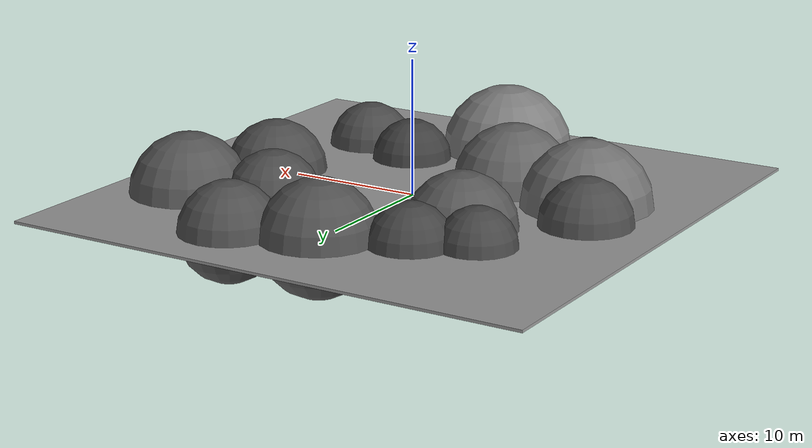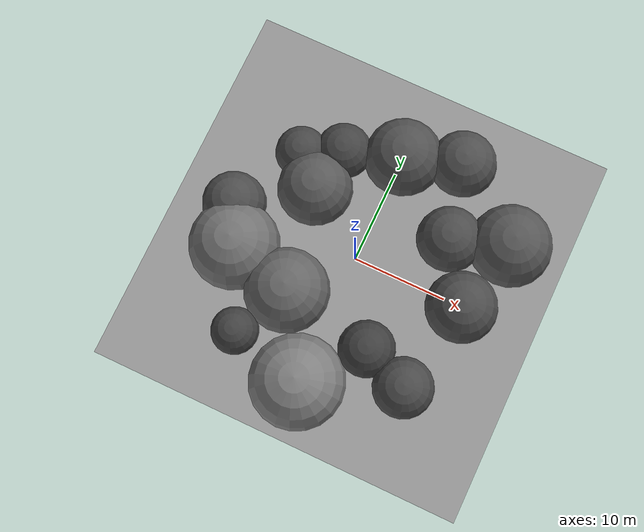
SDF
<?xml version="1.0" ?>
<sdf version="1.9">
<world name="lunar_crater_15">

  <!-- Lighting -->
  <light type="directional" name="sun">
    <pose>0 0 50 0 0 0</pose>
    <diffuse>0.7 0.7 0.7 1</diffuse>
    <direction>0 0 -1</direction>
    <cast_shadows>true</cast_shadows>
  </light>

  <!-- Lunar Surface (40x40m as per proposal) -->
  <model name="lunar_surface">
    <static>true</static>
    <link name="link">
      <collision name="collision">
        <geometry>
          <box>
            <size>40 40 0.2</size>
          </box>
        </geometry>
      </collision>
      <visual name="visual">
        <geometry>
          <box>
            <size>40 40 0.2</size>
          </box>
        </geometry>
        <material>
          <ambient>0.4 0.4 0.4 1</ambient>
          <diffuse>0.6 0.6 0.6 1</diffuse>
          <specular>0.1 0.1 0.1 1</specular>
        </material>
      </visual>
    </link>
  </model>

  <!-- 15 CRATERS (as per proposal: 15-20 craters) -->
  <!-- Crater sizes: 5-10m diameter (2.5-5m radius) as per proposal -->

  <model name="crater_1">
    <pose>8 6 0.1 0 0 0</pose>
    <static>true</static>
    <link name="link">
      <visual name="visual">
        <geometry><sphere><radius>3.5</radius></sphere></geometry>
        <material><ambient>0.2 0.2 0.2 1</ambient><diffuse>0.3 0.3 0.3 1</diffuse></material>
      </visual>
    </link>
  </model>

  <model name="crater_2">
    <pose>-7 5 0.1 0 0 0</pose>
    <static>true</static>
    <link name="link">
      <visual name="visual">
        <geometry><sphere><radius>4.0</radius></sphere></geometry>
        <material><ambient>0.25 0.25 0.25 1</ambient><diffuse>0.35 0.35 0.35 1</diffuse></material>
      </visual>
    </link>
  </model>

  <model name="crater_3">
    <pose>5 -8 0.1 0 0 0</pose>
    <static>true</static>
    <link name="link">
      <visual name="visual">
        <geometry><sphere><radius>3.0</radius></sphere></geometry>
        <material><ambient>0.15 0.15 0.15 1</ambient><diffuse>0.25 0.25 0.25 1</diffuse></material>
      </visual>
    </link>
  </model>

  <model name="crater_4">
    <pose>-5 -6 0.1 0 0 0</pose>
    <static>true</static>
    <link name="link">
      <visual name="visual">
        <geometry><sphere><radius>4.5</radius></sphere></geometry>
        <material><ambient>0.3 0.3 0.3 1</ambient><diffuse>0.4 0.4 0.4 1</diffuse></material>
      </visual>
    </link>
  </model>

  <model name="crater_5">
    <pose>12 0 0.1 0 0 0</pose>
    <static>true</static>
    <link name="link">
      <visual name="visual">
        <geometry><sphere><radius>3.8</radius></sphere></geometry>
        <material><ambient>0.2 0.2 0.2 1</ambient><diffuse>0.3 0.3 0.3 1</diffuse></material>
      </visual>
    </link>
  </model>

  <model name="crater_6">
    <pose>-10 8 0.1 0 0 0</pose>
    <static>true</static>
    <link name="link">
      <visual name="visual">
        <geometry><sphere><radius>2.8</radius></sphere></geometry>
        <material><ambient>0.18 0.18 0.18 1</ambient><diffuse>0.28 0.28 0.28 1</diffuse></material>
      </visual>
    </link>
  </model>

  <model name="crater_7">
    <pose>0 12 0.1 0 0 0</pose>
    <static>true</static>
    <link name="link">
      <visual name="visual">
        <geometry><sphere><radius>4.2</radius></sphere></geometry>
        <material><ambient>0.22 0.22 0.22 1</ambient><diffuse>0.32 0.32 0.32 1</diffuse></material>
      </visual>
    </link>
  </model>

  <model name="crater_8">
    <pose>10 -10 0.1 0 0 0</pose>
    <static>true</static>
    <link name="link">
      <visual name="visual">
        <geometry><sphere><radius>3.2</radius></sphere></geometry>
        <material><ambient>0.19 0.19 0.19 1</ambient><diffuse>0.29 0.29 0.29 1</diffuse></material>
      </visual>
    </link>
  </model>

  <model name="crater_9">
    <pose>-12 -4 0.1 0 0 0</pose>
    <static>true</static>
    <link name="link">
      <visual name="visual">
        <geometry><sphere><radius>4.8</radius></sphere></geometry>
        <material><ambient>0.35 0.35 0.35 1</ambient><diffuse>0.45 0.45 0.45 1</diffuse></material>
      </visual>
    </link>
  </model>

  <model name="crater_10">
    <pose>6 14 0.1 0 0 0</pose>
    <static>true</static>
    <link name="link">
      <visual name="visual">
        <geometry><sphere><radius>3.6</radius></sphere></geometry>
        <material><ambient>0.21 0.21 0.21 1</ambient><diffuse>0.31 0.31 0.31 1</diffuse></material>
      </visual>
    </link>
  </model>

  <model name="crater_11">
    <pose>-8 -12 0.1 0 0 0</pose>
    <static>true</static>
    <link name="link">
      <visual name="visual">
        <geometry><sphere><radius>2.5</radius></sphere></geometry>
        <material><ambient>0.16 0.16 0.16 1</ambient><diffuse>0.26 0.26 0.26 1</diffuse></material>
      </visual>
    </link>
  </model>

  <model name="crater_12">
    <pose>14 8 0.1 0 0 0</pose>
    <static>true</static>
    <link name="link">
      <visual name="visual">
        <geometry><sphere><radius>4.4</radius></sphere></geometry>
        <material><ambient>0.24 0.24 0.24 1</ambient><diffuse>0.34 0.34 0.34 1</diffuse></material>
      </visual>
    </link>
  </model>

  <model name="crater_13">
    <pose>-14 0 0.1 0 0 0</pose>
    <static>true</static>
    <link name="link">
      <visual name="visual">
        <geometry><sphere><radius>3.4</radius></sphere></geometry>
        <material><ambient>0.2 0.2 0.2 1</ambient><diffuse>0.3 0.3 0.3 1</diffuse></material>
      </visual>
    </link>
  </model>

  <model name="crater_14">
    <pose>0 -14 0.1 0 0 0</pose>
    <static>true</static>
    <link name="link">
      <visual name="visual">
        <geometry><sphere><radius>5.0</radius></sphere></geometry>
        <material><ambient>0.4 0.4 0.4 1</ambient><diffuse>0.5 0.5 0.5 1</diffuse></material>
      </visual>
    </link>
  </model>

  <model name="crater_15">
    <pose>-6 10 0.1 0 0 0</pose>
    <static>true</static>
    <link name="link">
      <visual name="visual">
        <geometry><sphere><radius>3.0</radius></sphere></geometry>
        <material><ambient>0.17 0.17 0.17 1</ambient><diffuse>0.27 0.27 0.27 1</diffuse></material>
      </visual>
    </link>
  </model>

</world>
</sdf>
